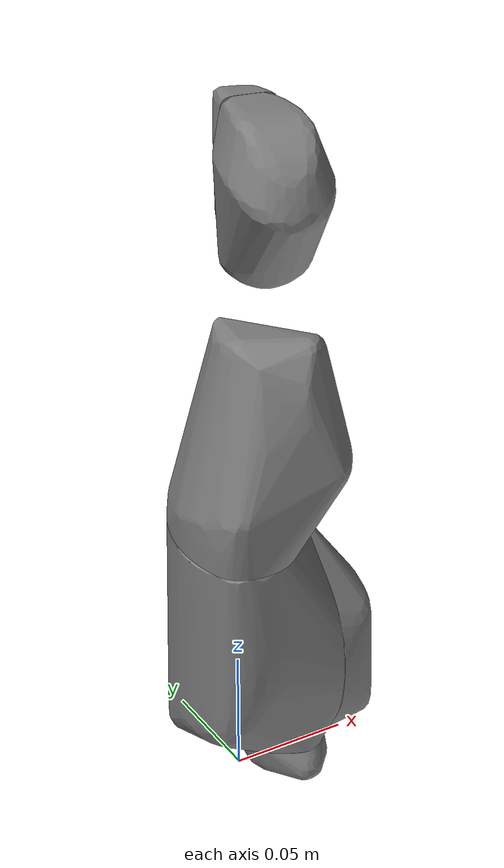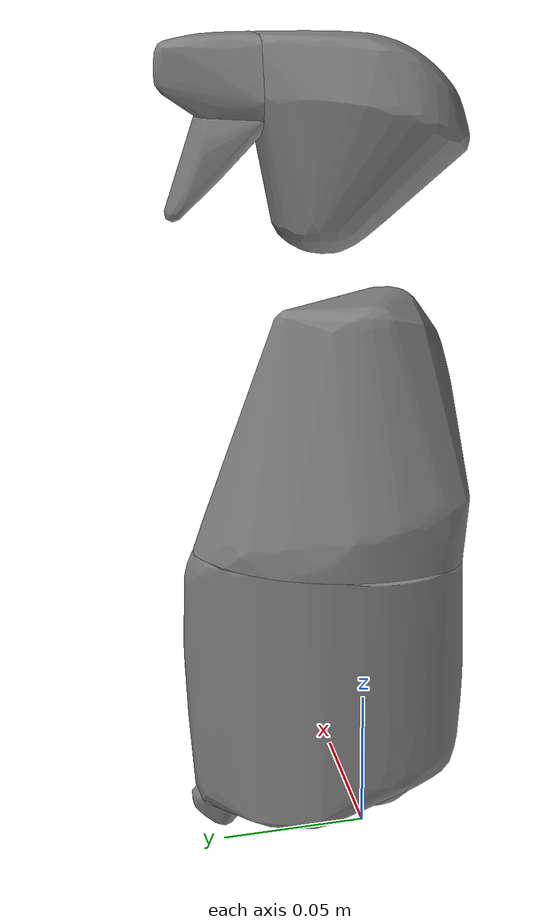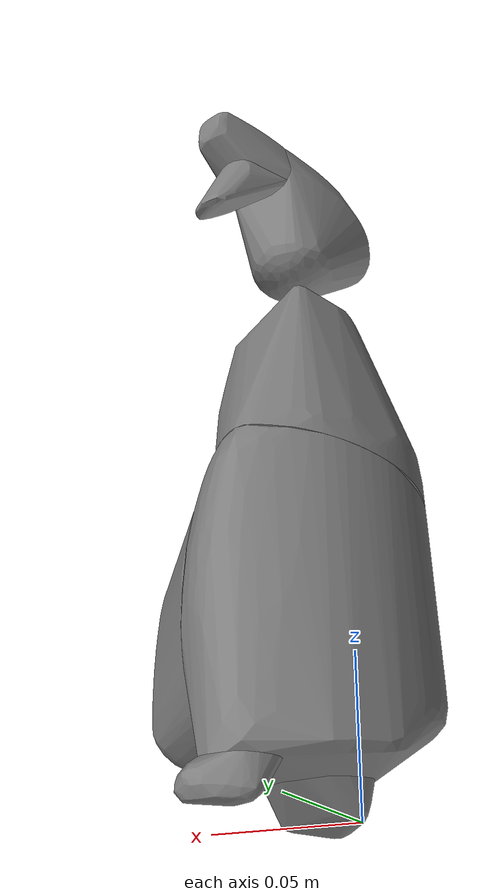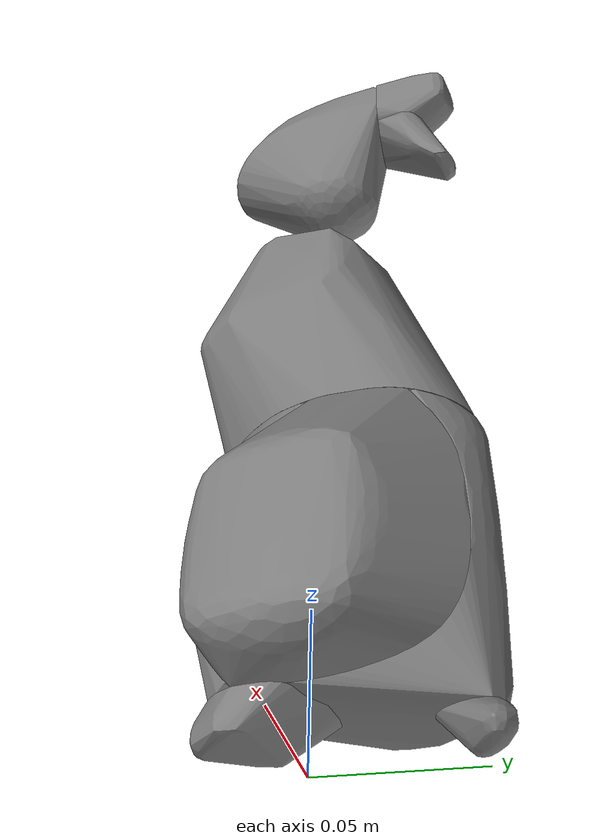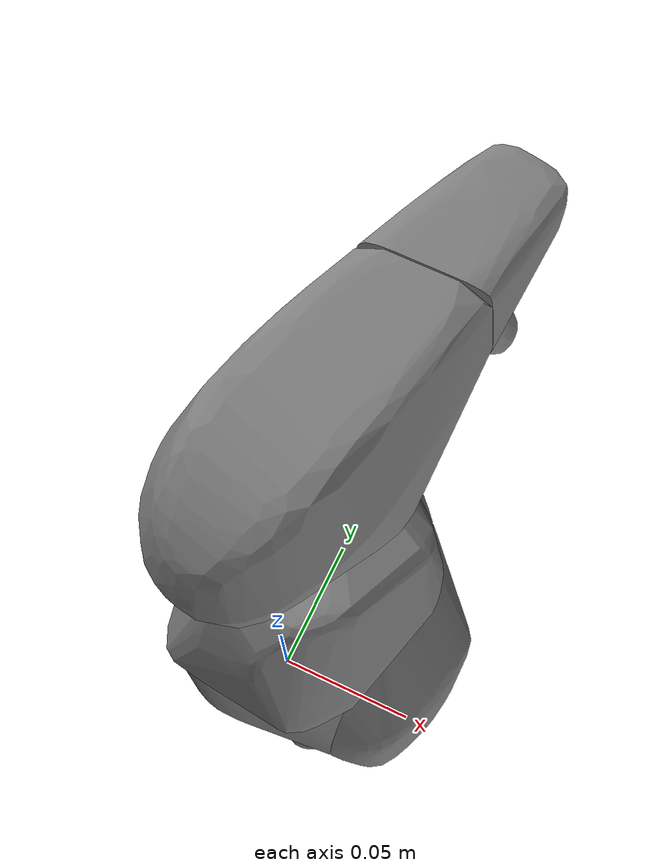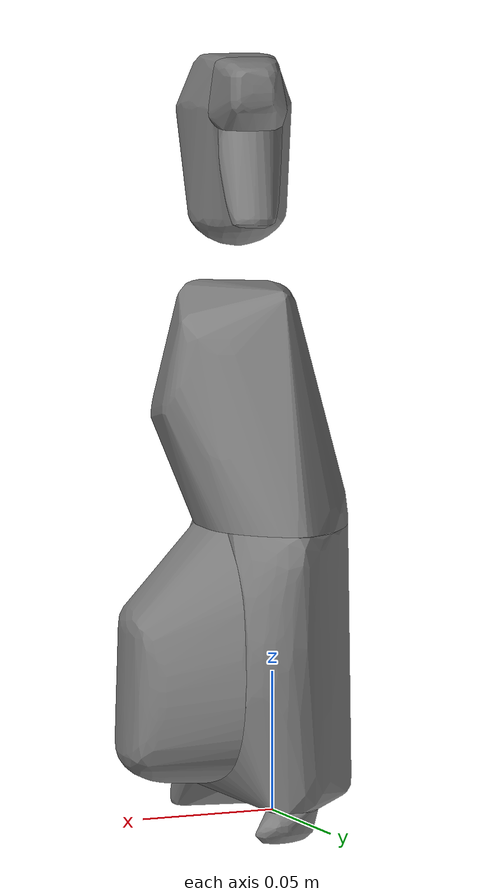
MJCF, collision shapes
<mujoco model="ycb_022_windex_bottle">
  <compiler meshdir="meshes" texturedir="meshes" angle="radian"/>
  <default>
    <default class="visual"><geom contype="0" conaffinity="0" group="2" density="0"/></default>
    <default class="collision"><geom group="3"/></default>
  </default>
  <asset>
    <texture name="ycb_022_windex_bottle_tex" type="2d" file="ycb_022_windex_bottle_texture.png"/>
    <material name="ycb_022_windex_bottle_mat" texture="ycb_022_windex_bottle_tex" specular="0.2" shininess="0.3"/>
    <mesh name="ycb_022_windex_bottle_visual" file="ycb_022_windex_bottle_visual.obj"/>
    <mesh name="ycb_022_windex_bottle_hull0" file="ycb_022_windex_bottle_hull0.obj"/>
    <mesh name="ycb_022_windex_bottle_hull1" file="ycb_022_windex_bottle_hull1.obj"/>
    <mesh name="ycb_022_windex_bottle_hull2" file="ycb_022_windex_bottle_hull2.obj"/>
    <mesh name="ycb_022_windex_bottle_hull3" file="ycb_022_windex_bottle_hull3.obj"/>
    <mesh name="ycb_022_windex_bottle_hull4" file="ycb_022_windex_bottle_hull4.obj"/>
    <mesh name="ycb_022_windex_bottle_hull5" file="ycb_022_windex_bottle_hull5.obj"/>
    <mesh name="ycb_022_windex_bottle_hull6" file="ycb_022_windex_bottle_hull6.obj"/>
    <mesh name="ycb_022_windex_bottle_hull7" file="ycb_022_windex_bottle_hull7.obj"/>
  </asset>
  <worldbody>
    <body name="object" pos="0 0 0">
      <freejoint name="object_free"/>
      <geom type="mesh" mesh="ycb_022_windex_bottle_visual" material="ycb_022_windex_bottle_mat" class="visual"/>
      <geom type="mesh" mesh="ycb_022_windex_bottle_hull0" class="collision"/>
      <geom type="mesh" mesh="ycb_022_windex_bottle_hull1" class="collision"/>
      <geom type="mesh" mesh="ycb_022_windex_bottle_hull2" class="collision"/>
      <geom type="mesh" mesh="ycb_022_windex_bottle_hull3" class="collision"/>
      <geom type="mesh" mesh="ycb_022_windex_bottle_hull4" class="collision"/>
      <geom type="mesh" mesh="ycb_022_windex_bottle_hull5" class="collision"/>
      <geom type="mesh" mesh="ycb_022_windex_bottle_hull6" class="collision"/>
      <geom type="mesh" mesh="ycb_022_windex_bottle_hull7" class="collision"/>
    </body>
  </worldbody>
</mujoco>
